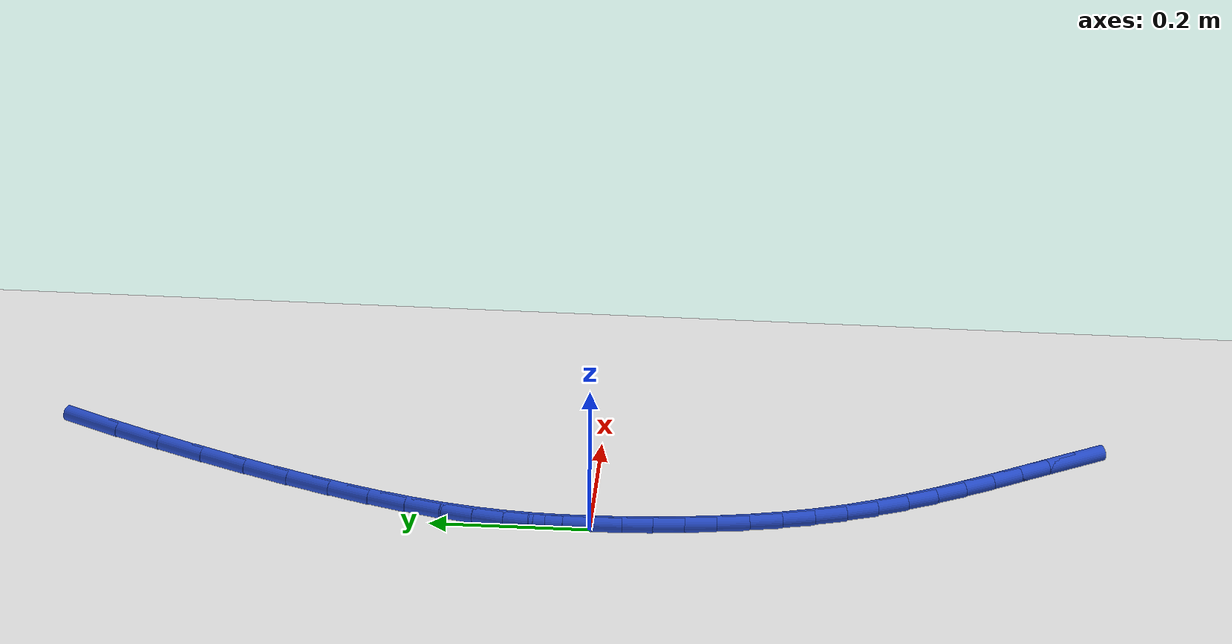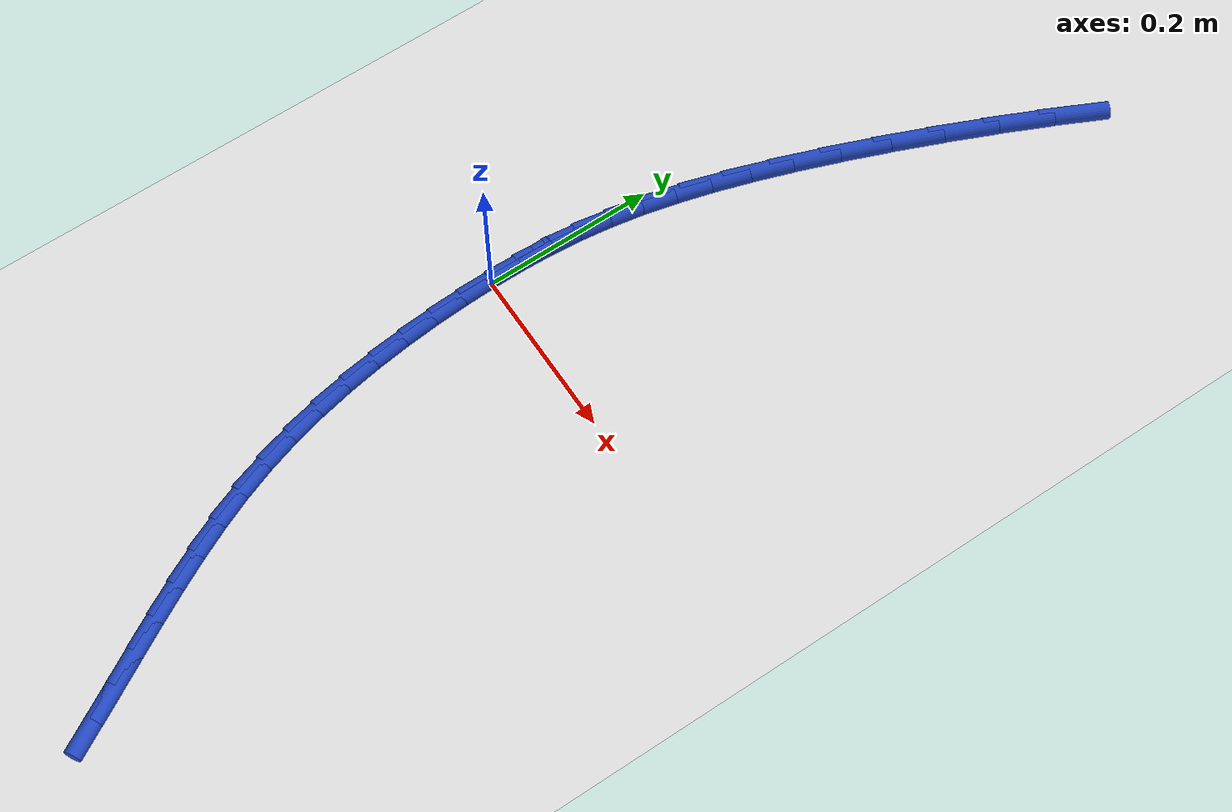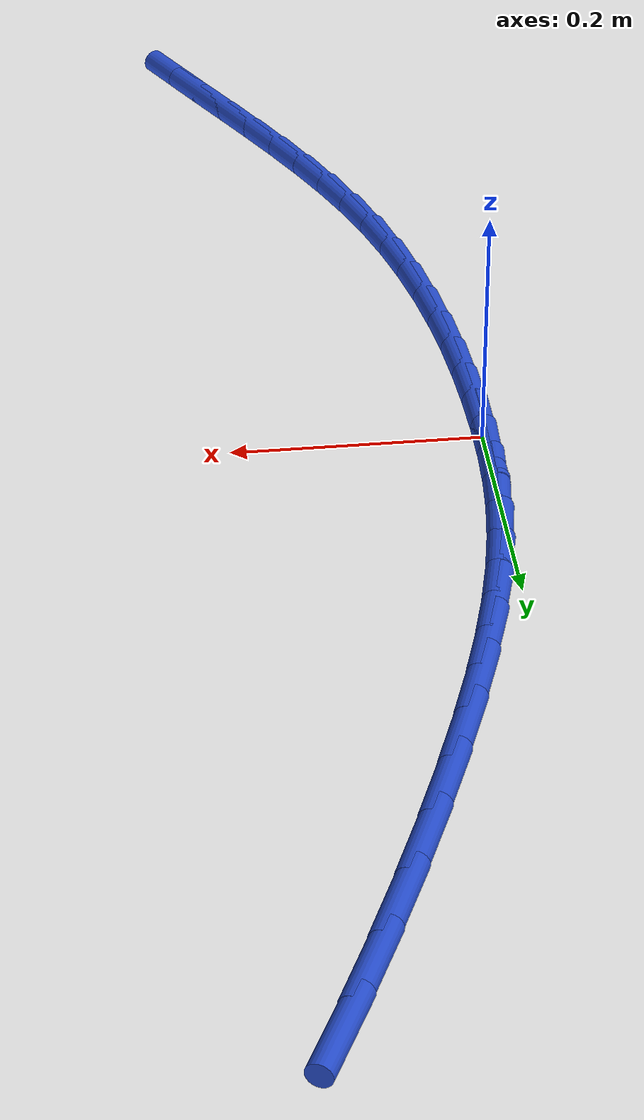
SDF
<sdf version="1.6">
 <world name="default">
  <model name="ground_plane">
   <static>1</static>
   <link name="link">
    <collision name="collision">
     <geometry><plane><normal>0 0 1</normal><size>100 100</size></plane></geometry>
     <surface><friction><ode><mu>100</mu><mu2>50</mu2></ode></friction></surface>
    </collision>
    <visual name="visual">
     <cast_shadows>0</cast_shadows>
     <geometry><plane><normal>0 0 1</normal><size>100 100</size></plane></geometry>
     <material>
      <script><uri>file://media/materials/scripts/gazebo.material</uri><name>Gazebo/WhiteGlow</name></script>
     </material>
    </visual>
   </link>
  </model>
  <model name="line">
   <link name="link_0">
    <pose>1.1709383462843448e-17 -2.0816681711721685e-17 0.01 0 1.57 -1.568764740922635</pose>
    <collision name="collision">
     <geometry><cylinder><radius>0.01</radius><length>0.08</length></cylinder></geometry>
    </collision>
    <visual name="visual">
     <material>
      <script><name>Gazebo/Blue</name><uri>file://media/materials/scripts/gazebo.material</uri></script>
     </material>
     <geometry><cylinder><radius>0.01</radius><length>0.08</length></cylinder></geometry>
    </visual>
   </link>
   <link name="link_1">
    <pose>-7.468282264461221e-05 0.03676079899802648 0.01 0 1.57 1.5355054508221713</pose>
    <collision name="collision">
     <geometry><cylinder><radius>0.01</radius><length>0.08</length></cylinder></geometry>
    </collision>
    <visual name="visual">
     <material>
      <script><name>Gazebo/Blue</name><uri>file://media/materials/scripts/gazebo.material</uri></script>
     </material>
     <geometry><cylinder><radius>0.01</radius><length>0.08</length></cylinder></geometry>
    </visual>
   </link>
   <link name="link_2">
    <pose>0.0012002372762436623 0.07287185429100888 0.01 0 1.57 1.4914945790998744</pose>
    <collision name="collision">
     <geometry><cylinder><radius>0.01</radius><length>0.08</length></cylinder></geometry>
    </collision>
    <visual name="visual">
     <material>
      <script><name>Gazebo/Blue</name><uri>file://media/materials/scripts/gazebo.material</uri></script>
     </material>
     <geometry><cylinder><radius>0.01</radius><length>0.08</length></cylinder></geometry>
    </visual>
   </link>
   <link name="link_3">
    <pose>0.004075231434574496 0.1090496812685904 0.01 0 1.57 1.4436345479059882</pose>
    <collision name="collision">
     <geometry><cylinder><radius>0.01</radius><length>0.08</length></cylinder></geometry>
    </collision>
    <visual name="visual">
     <material>
      <script><name>Gazebo/Blue</name><uri>file://media/materials/scripts/gazebo.material</uri></script>
     </material>
     <geometry><cylinder><radius>0.01</radius><length>0.08</length></cylinder></geometry>
    </visual>
   </link>
   <link name="link_4">
    <pose>0.008800770790257555 0.1460107953204142 0.01 0 1.57 1.3951324595989985</pose>
    <collision name="collision">
     <geometry><cylinder><radius>0.01</radius><length>0.08</length></cylinder></geometry>
    </collision>
    <visual name="visual">
     <material>
      <script><name>Gazebo/Blue</name><uri>file://media/materials/scripts/gazebo.material</uri></script>
     </material>
     <geometry><cylinder><radius>0.01</radius><length>0.08</length></cylinder></geometry>
    </visual>
   </link>
   <link name="link_5">
    <pose>0.015627326481202505 0.18447171183612354 0.01 0 1.57 1.3488814153215</pose>
    <collision name="collision">
     <geometry><cylinder><radius>0.01</radius><length>0.08</length></cylinder></geometry>
    </collision>
    <visual name="visual">
     <material>
      <script><name>Gazebo/Blue</name><uri>file://media/materials/scripts/gazebo.material</uri></script>
     </material>
     <geometry><cylinder><radius>0.01</radius><length>0.08</length></cylinder></geometry>
    </visual>
   </link>
   <link name="link_6">
    <pose>0.024805369645319007 0.22514894620536158 0.01 0 1.57 1.3069715740940149</pose>
    <collision name="collision">
     <geometry><cylinder><radius>0.01</radius><length>0.08</length></cylinder></geometry>
    </collision>
    <visual name="visual">
     <material>
      <script><name>Gazebo/Blue</name><uri>file://media/materials/scripts/gazebo.material</uri></script>
     </material>
     <geometry><cylinder><radius>0.01</radius><length>0.08</length></cylinder></geometry>
    </visual>
   </link>
   <link name="link_7">
    <pose>0.03658537142051675 0.2687590138177717 0.01 0 1.57 1.270539225523364</pose>
    <collision name="collision">
     <geometry><cylinder><radius>0.01</radius><length>0.08</length></cylinder></geometry>
    </collision>
    <visual name="visual">
     <material>
      <script><name>Gazebo/Blue</name><uri>file://media/materials/scripts/gazebo.material</uri></script>
     </material>
     <geometry><cylinder><radius>0.01</radius><length>0.08</length></cylinder></geometry>
    </visual>
   </link>
   <link name="link_8">
    <pose>0.051217482449885235 0.3160176105698323 0.01 0 1.57 1.2402362665513227</pose>
    <collision name="collision">
     <geometry><cylinder><radius>0.01</radius><length>0.08</length></cylinder></geometry>
    </collision>
    <visual name="visual">
     <material>
      <script><name>Gazebo/Blue</name><uri>file://media/materials/scripts/gazebo.material</uri></script>
     </material>
     <geometry><cylinder><radius>0.01</radius><length>0.08</length></cylinder></geometry>
    </visual>
   </link>
   <link name="link_9">
    <pose>0.06878901132593096 0.36722405137787556 0.01 0 1.57 1.2154882764751367</pose>
    <collision name="collision">
     <geometry><cylinder><radius>0.01</radius><length>0.08</length></cylinder></geometry>
    </collision>
    <visual name="visual">
     <material>
      <script><name>Gazebo/Blue</name><uri>file://media/materials/scripts/gazebo.material</uri></script>
     </material>
     <geometry><cylinder><radius>0.01</radius><length>0.08</length></cylinder></geometry>
    </visual>
   </link>
   <link name="link_10">
    <pose>0.0889599540403434 0.42158502895825334 0.01 0 1.57 1.1942134926526518</pose>
    <collision name="collision">
     <geometry><cylinder><radius>0.01</radius><length>0.08</length></cylinder></geometry>
    </collision>
    <visual name="visual">
     <material>
      <script><name>Gazebo/Blue</name><uri>file://media/materials/scripts/gazebo.material</uri></script>
     </material>
     <geometry><cylinder><radius>0.01</radius><length>0.08</length></cylinder></geometry>
    </visual>
   </link>
   <link name="link_11">
    <pose>0.11132106244470293 0.4781301813732841 0.01 0 1.57 1.1748876541137376</pose>
    <collision name="collision">
     <geometry><cylinder><radius>0.01</radius><length>0.08</length></cylinder></geometry>
    </collision>
    <visual name="visual">
     <material>
      <script><name>Gazebo/Blue</name><uri>file://media/materials/scripts/gazebo.material</uri></script>
     </material>
     <geometry><cylinder><radius>0.01</radius><length>0.08</length></cylinder></geometry>
    </visual>
   </link>
   <link name="link_12">
    <pose>0.13546308839059001 0.5358891466852866 0.01 0 1.57 1.1563958798590623</pose>
    <collision name="collision">
     <geometry><cylinder><radius>0.01</radius><length>0.08</length></cylinder></geometry>
    </collision>
    <visual name="visual">
     <material>
      <script><name>Gazebo/Blue</name><uri>file://media/materials/scripts/gazebo.material</uri></script>
     </material>
     <geometry><cylinder><radius>0.01</radius><length>0.08</length></cylinder></geometry>
    </visual>
   </link>
   <link name="link_13">
    <pose>0.16097678372958496 0.5938915629565795 0.01 0 1.57 1.1377947267360347</pose>
    <collision name="collision">
     <geometry><cylinder><radius>0.01</radius><length>0.08</length></cylinder></geometry>
    </collision>
    <visual name="visual">
     <material>
      <script><name>Gazebo/Blue</name><uri>file://media/materials/scripts/gazebo.material</uri></script>
     </material>
     <geometry><cylinder><radius>0.01</radius><length>0.08</length></cylinder></geometry>
    </visual>
   </link>
   <link name="link_14">
    <pose>0.18745290031326825 0.6511670682494815 0.01 0 1.57 1.1181454501736163</pose>
    <collision name="collision">
     <geometry><cylinder><radius>0.01</radius><length>0.08</length></cylinder></geometry>
    </collision>
    <visual name="visual">
     <material>
      <script><name>Gazebo/Blue</name><uri>file://media/materials/scripts/gazebo.material</uri></script>
     </material>
     <geometry><cylinder><radius>0.01</radius><length>0.08</length></cylinder></geometry>
    </visual>
   </link>
   <link name="link_184">
    <pose>0.19671733512757766 -0.5978656016701469 0.01 0 1.57 -1.0500930383964155</pose>
    <collision name="collision">
     <geometry><cylinder><radius>0.01</radius><length>0.08</length></cylinder></geometry>
    </collision>
    <visual name="visual">
     <material>
      <script><name>Gazebo/Blue</name><uri>file://media/materials/scripts/gazebo.material</uri></script>
     </material>
     <geometry><cylinder><radius>0.01</radius><length>0.08</length></cylinder></geometry>
    </visual>
   </link>
   <link name="link_185">
    <pose>0.17657578278135594 -0.5627449547579092 0.01 0 1.57 -1.0449812260413398</pose>
    <collision name="collision">
     <geometry><cylinder><radius>0.01</radius><length>0.08</length></cylinder></geometry>
    </collision>
    <visual name="visual">
     <material>
      <script><name>Gazebo/Blue</name><uri>file://media/materials/scripts/gazebo.material</uri></script>
     </material>
     <geometry><cylinder><radius>0.01</radius><length>0.08</length></cylinder></geometry>
    </visual>
   </link>
   <link name="link_186">
    <pose>0.1563942934421728 -0.5279678209205811 0.01 0 1.57 -1.0487964133172407</pose>
    <collision name="collision">
     <geometry><cylinder><radius>0.01</radius><length>0.08</length></cylinder></geometry>
    </collision>
    <visual name="visual">
     <material>
      <script><name>Gazebo/Blue</name><uri>file://media/materials/scripts/gazebo.material</uri></script>
     </material>
     <geometry><cylinder><radius>0.01</radius><length>0.08</length></cylinder></geometry>
    </visual>
   </link>
   <link name="link_187">
    <pose>0.13646382419311032 -0.4933194171955469 0.01 0 1.57 -1.0617488168912368</pose>
    <collision name="collision">
     <geometry><cylinder><radius>0.01</radius><length>0.08</length></cylinder></geometry>
    </collision>
    <visual name="visual">
     <material>
      <script><name>Gazebo/Blue</name><uri>file://media/materials/scripts/gazebo.material</uri></script>
     </material>
     <geometry><cylinder><radius>0.01</radius><length>0.08</length></cylinder></geometry>
    </visual>
   </link>
   <link name="link_188">
    <pose>0.1170772276404784 -0.45858319016275534 0.01 0 1.57 -1.0839202023710153</pose>
    <collision name="collision">
     <geometry><cylinder><radius>0.01</radius><length>0.08</length></cylinder></geometry>
    </collision>
    <visual name="visual">
     <material>
      <script><name>Gazebo/Blue</name><uri>file://media/materials/scripts/gazebo.material</uri></script>
     </material>
     <geometry><cylinder><radius>0.01</radius><length>0.08</length></cylinder></geometry>
    </visual>
   </link>
   <link name="link_189">
    <pose>0.0985273563905868 -0.42354258640215525 0.01 0 1.57 -1.1152908448348118</pose>
    <collision name="collision">
     <geometry><cylinder><radius>0.01</radius><length>0.08</length></cylinder></geometry>
    </collision>
    <visual name="visual">
     <material>
      <script><name>Gazebo/Blue</name><uri>file://media/materials/scripts/gazebo.material</uri></script>
     </material>
     <geometry><cylinder><radius>0.01</radius><length>0.08</length></cylinder></geometry>
    </visual>
   </link>
   <link name="link_190">
    <pose>0.08110706304974541 -0.38798105249369536 0.01 0 1.57 -1.1556827078781244</pose>
    <collision name="collision">
     <geometry><cylinder><radius>0.01</radius><length>0.08</length></cylinder></geometry>
    </collision>
    <visual name="visual">
     <material>
      <script><name>Gazebo/Blue</name><uri>file://media/materials/scripts/gazebo.material</uri></script>
     </material>
     <geometry><cylinder><radius>0.01</radius><length>0.08</length></cylinder></geometry>
    </visual>
   </link>
   <link name="link_191">
    <pose>0.06510920022426406 -0.35168203501732465 0.01 0 1.57 -1.2046873358287342</pose>
    <collision name="collision">
     <geometry><cylinder><radius>0.01</radius><length>0.08</length></cylinder></geometry>
    </collision>
    <visual name="visual">
     <material>
      <script><name>Gazebo/Blue</name><uri>file://media/materials/scripts/gazebo.material</uri></script>
     </material>
     <geometry><cylinder><radius>0.01</radius><length>0.08</length></cylinder></geometry>
    </visual>
   </link>
   <link name="link_192">
    <pose>0.05082662052045287 -0.3144289805529927 0.01 0 1.57 -1.260134535701582</pose>
    <collision name="collision">
     <geometry><cylinder><radius>0.01</radius><length>0.08</length></cylinder></geometry>
    </collision>
    <visual name="visual">
     <material>
      <script><name>Gazebo/Blue</name><uri>file://media/materials/scripts/gazebo.material</uri></script>
     </material>
     <geometry><cylinder><radius>0.01</radius><length>0.08</length></cylinder></geometry>
    </visual>
   </link>
   <link name="link_193">
    <pose>0.038508736949145805 -0.27606236693897257 0.01 0 1.57 -1.3126880951223536</pose>
    <collision name="collision">
     <geometry><cylinder><radius>0.01</radius><length>0.08</length></cylinder></geometry>
    </collision>
    <visual name="visual">
     <material>
      <script><name>Gazebo/Blue</name><uri>file://media/materials/scripts/gazebo.material</uri></script>
     </material>
     <geometry><cylinder><radius>0.01</radius><length>0.08</length></cylinder></geometry>
    </visual>
   </link>
   <link name="link_194">
    <pose>0.02813689237846668 -0.23677461768410166 0.01 0 1.57 -1.359693304625498</pose>
    <collision name="collision">
     <geometry><cylinder><radius>0.01</radius><length>0.08</length></cylinder></geometry>
    </collision>
    <visual name="visual">
     <material>
      <script><name>Gazebo/Blue</name><uri>file://media/materials/scripts/gazebo.material</uri></script>
     </material>
     <geometry><cylinder><radius>0.01</radius><length>0.08</length></cylinder></geometry>
    </visual>
   </link>
   <link name="link_195">
    <pose>0.019590272399511024 -0.19689227720677682 0.01 0 1.57 -1.4019973454323644</pose>
    <collision name="collision">
     <geometry><cylinder><radius>0.01</radius><length>0.08</length></cylinder></geometry>
    </collision>
    <visual name="visual">
     <material>
      <script><name>Gazebo/Blue</name><uri>file://media/materials/scripts/gazebo.material</uri></script>
     </material>
     <geometry><cylinder><radius>0.01</radius><length>0.08</length></cylinder></geometry>
    </visual>
   </link>
   <link name="link_196">
    <pose>0.012747861544262126 -0.15674215389318816 0.01 0 1.57 -1.4403594660702395</pose>
    <collision name="collision">
     <geometry><cylinder><radius>0.01</radius><length>0.08</length></cylinder></geometry>
    </collision>
    <visual name="visual">
     <material>
      <script><name>Gazebo/Blue</name><uri>file://media/materials/scripts/gazebo.material</uri></script>
     </material>
     <geometry><cylinder><radius>0.01</radius><length>0.08</length></cylinder></geometry>
    </visual>
   </link>
   <link name="link_197">
    <pose>0.007488644344703275 -0.11665105612952589 0.01 0 1.57 -1.4754556380638353</pose>
    <collision name="collision">
     <geometry><cylinder><radius>0.01</radius><length>0.08</length></cylinder></geometry>
    </collision>
    <visual name="visual">
     <material>
      <script><name>Gazebo/Blue</name><uri>file://media/materials/scripts/gazebo.material</uri></script>
     </material>
     <geometry><cylinder><radius>0.01</radius><length>0.08</length></cylinder></geometry>
    </visual>
   </link>
   <link name="link_198">
    <pose>0.003691605332817779 -0.0769457923019803 0.01 0 1.57 -1.5078963081965626</pose>
    <collision name="collision">
     <geometry><cylinder><radius>0.01</radius><length>0.08</length></cylinder></geometry>
    </collision>
    <visual name="visual">
     <material>
      <script><name>Gazebo/Blue</name><uri>file://media/materials/scripts/gazebo.material</uri></script>
     </material>
     <geometry><cylinder><radius>0.01</radius><length>0.08</length></cylinder></geometry>
    </visual>
   </link>
   <link name="link_199">
    <pose>0.0012357290405889234 -0.03795317079674154 0.01 0 1.57 -1.5382485152897352</pose>
    <collision name="collision">
     <geometry><cylinder><radius>0.01</radius><length>0.08</length></cylinder></geometry>
    </collision>
    <visual name="visual">
     <material>
      <script><name>Gazebo/Blue</name><uri>file://media/materials/scripts/gazebo.material</uri></script>
     </material>
     <geometry><cylinder><radius>0.01</radius><length>0.08</length></cylinder></geometry>
    </visual>
   </link>
   <link name="link_200">
    <pose>9.540979117872439e-18 6.245004513516506e-17 0.01 0 1.57 -1.56706284353712</pose>
    <collision name="collision">
     <geometry><cylinder><radius>0.01</radius><length>0.08</length></cylinder></geometry>
    </collision>
    <visual name="visual">
     <material>
      <script><name>Gazebo/Blue</name><uri>file://media/materials/scripts/gazebo.material</uri></script>
     </material>
     <geometry><cylinder><radius>0.01</radius><length>0.08</length></cylinder></geometry>
    </visual>
   </link>
   <link name="link_201">
    <pose>-0.00013659725696566274 0.03658691170205518 0.01 0 1.57 -1.5670628435371199</pose>
    <collision name="collision">
     <geometry><cylinder><radius>0.01</radius><length>0.08</length></cylinder></geometry>
    </collision>
    <visual name="visual">
     <material>
      <script><name>Gazebo/Blue</name><uri>file://media/materials/scripts/gazebo.material</uri></script>
     </material>
     <geometry><cylinder><radius>0.01</radius><length>0.08</length></cylinder></geometry>
    </visual>
   </link>
  </model>
 </world>
</sdf>
